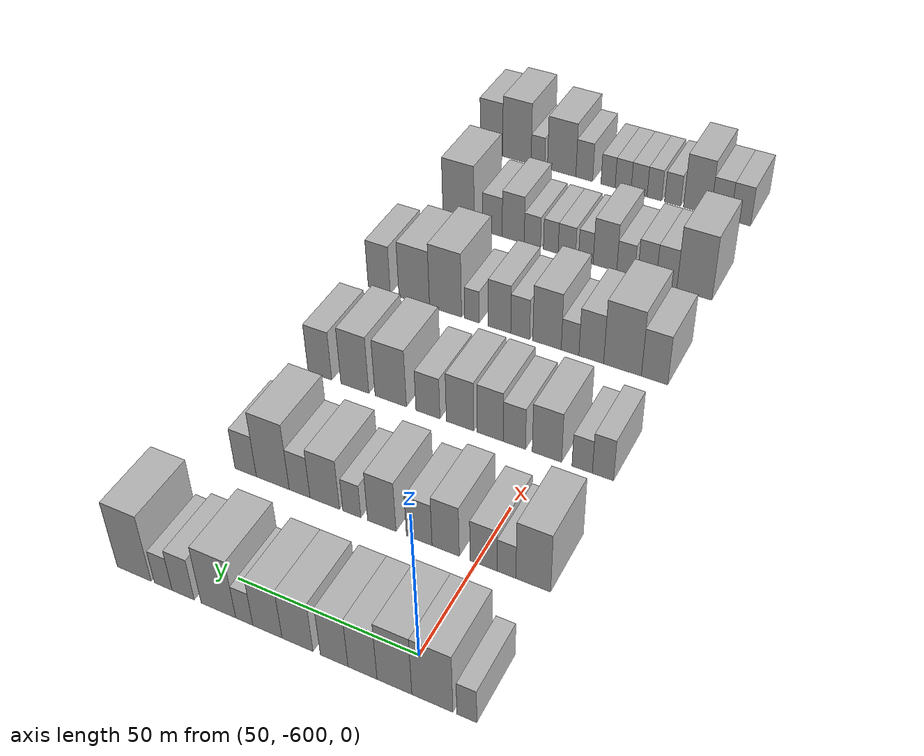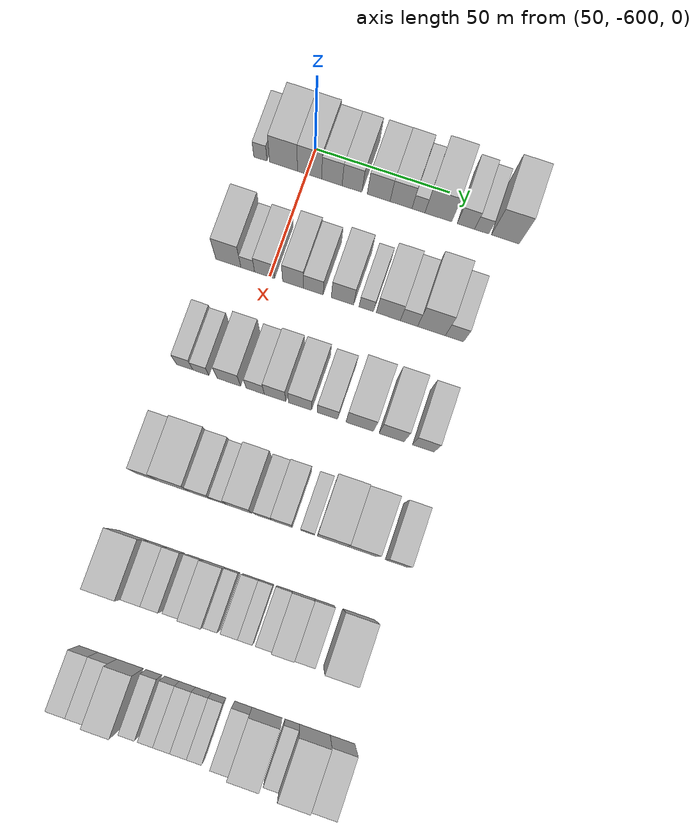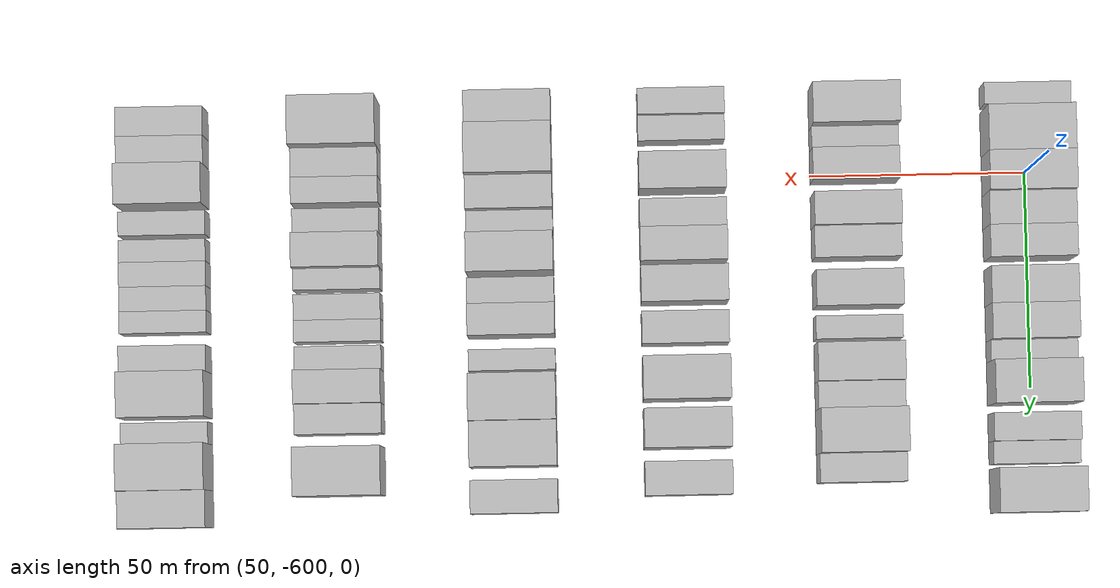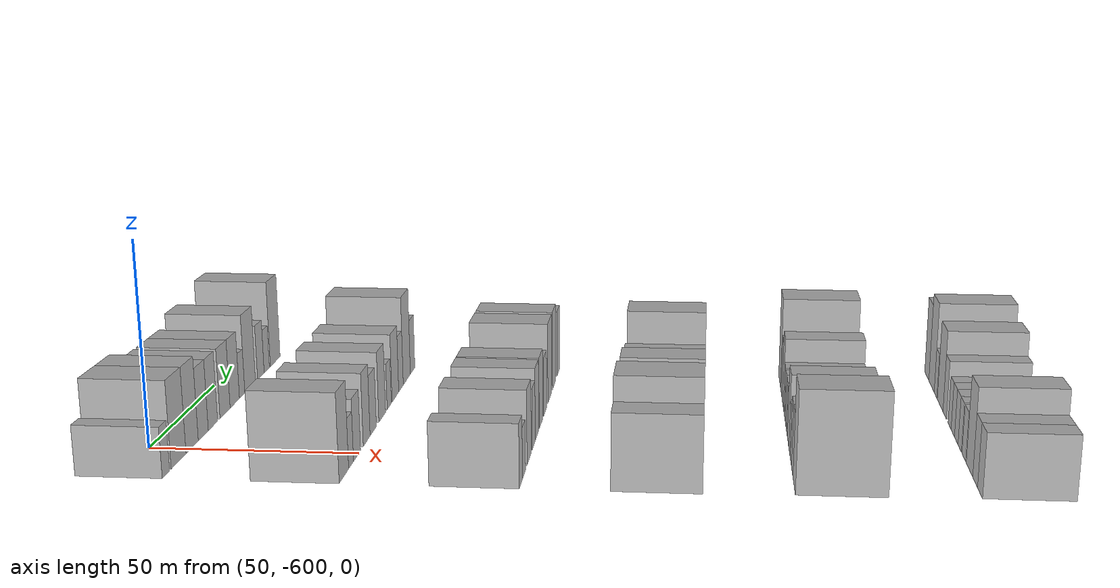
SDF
<sdf version="1.6">
 <world name="default">
  <model name="building_1">
   <static>1</static>
   <pose>50.0000 -617.5080 0 0.000000 0.000000 0.000000</pose>
   <link name="link">
    <pose>0 0 6.00 0 0 0</pose>
    <collision name="collision"><geometry><box><size>20.0000 4.9839 12.0000</size></box></geometry></collision>
    <visual name="visual">
     <cast_shadows>0</cast_shadows>
     <geometry><box><size>20.0000 4.9839 12.0000</size></box></geometry>
     <material>
      <script>
       <uri>model://HANNAS_wall/materials/scripts</uri>
       <uri>model://HANNAS_wall/materials/textures</uri>
       <name>vrc/HANNAS_wall</name>
      </script>
     </material>
    </visual>
   </link>
  </model>
  <model name="building_2">
   <static>1</static>
   <pose>50.0000 -608.7805 0 0.000000 0.000000 0.000000</pose>
   <link name="link">
    <pose>0 0 10.50 0 0 0</pose>
    <collision name="collision"><geometry><box><size>20.0000 10.4712 21.0000</size></box></geometry></collision>
    <visual name="visual">
     <cast_shadows>0</cast_shadows>
     <geometry><box><size>20.0000 10.4712 21.0000</size></box></geometry>
     <material>
      <script>
       <uri>model://HANNAS_wall/materials/scripts</uri>
       <uri>model://HANNAS_wall/materials/textures</uri>
       <name>vrc/HANNAS_wall</name>
      </script>
     </material>
    </visual>
   </link>
  </model>
  <model name="building_3">
   <static>1</static>
   <pose>50.0000 -599.0032 0 0.000000 0.000000 0.000000</pose>
   <link name="link">
    <pose>0 0 10.50 0 0 0</pose>
    <collision name="collision"><geometry><box><size>20.0000 9.0833 21.0000</size></box></geometry></collision>
    <visual name="visual">
     <cast_shadows>0</cast_shadows>
     <geometry><box><size>20.0000 9.0833 21.0000</size></box></geometry>
     <material>
      <script>
       <uri>model://HANNAS_wall/materials/scripts</uri>
       <uri>model://HANNAS_wall/materials/textures</uri>
       <name>vrc/HANNAS_wall</name>
      </script>
     </material>
    </visual>
   </link>
  </model>
  <model name="building_4">
   <static>1</static>
   <pose>50.0000 -590.6134 0 0.000000 0.000000 0.000000</pose>
   <link name="link">
    <pose>0 0 9.00 0 0 0</pose>
    <collision name="collision"><geometry><box><size>20.0000 7.6965 18.0000</size></box></geometry></collision>
    <visual name="visual">
     <cast_shadows>0</cast_shadows>
     <geometry><box><size>20.0000 7.6965 18.0000</size></box></geometry>
     <material>
      <script>
       <uri>model://HANNAS_wall/materials/scripts</uri>
       <uri>model://HANNAS_wall/materials/textures</uri>
       <name>vrc/HANNAS_wall</name>
      </script>
     </material>
    </visual>
   </link>
  </model>
  <model name="building_5">
   <static>1</static>
   <pose>50.0000 -583.0436 0 0.000000 0.000000 0.000000</pose>
   <link name="link">
    <pose>0 0 9.00 0 0 0</pose>
    <collision name="collision"><geometry><box><size>20.0000 7.4431 18.0000</size></box></geometry></collision>
    <visual name="visual">
     <cast_shadows>0</cast_shadows>
     <geometry><box><size>20.0000 7.4431 18.0000</size></box></geometry>
     <material>
      <script>
       <uri>model://HANNAS_wall/materials/scripts</uri>
       <uri>model://HANNAS_wall/materials/textures</uri>
       <name>vrc/HANNAS_wall</name>
      </script>
     </material>
    </visual>
   </link>
  </model>
  <model name="building_6">
   <static>1</static>
   <pose>50.0000 -573.0656 0 0.000000 0.000000 0.000000</pose>
   <link name="link">
    <pose>0 0 9.00 0 0 0</pose>
    <collision name="collision"><geometry><box><size>20.0000 8.5128 18.0000</size></box></geometry></collision>
    <visual name="visual">
     <cast_shadows>0</cast_shadows>
     <geometry><box><size>20.0000 8.5128 18.0000</size></box></geometry>
     <material>
      <script>
       <uri>model://HANNAS_wall/materials/scripts</uri>
       <uri>model://HANNAS_wall/materials/textures</uri>
       <name>vrc/HANNAS_wall</name>
      </script>
     </material>
    </visual>
   </link>
  </model>
  <model name="building_7">
   <static>1</static>
   <pose>50.0000 -564.7174 0 0.000000 0.000000 0.000000</pose>
   <link name="link">
    <pose>0 0 9.00 0 0 0</pose>
    <collision name="collision"><geometry><box><size>20.0000 8.1836 18.0000</size></box></geometry></collision>
    <visual name="visual">
     <cast_shadows>0</cast_shadows>
     <geometry><box><size>20.0000 8.1836 18.0000</size></box></geometry>
     <material>
      <script>
       <uri>model://HANNAS_wall/materials/scripts</uri>
       <uri>model://HANNAS_wall/materials/textures</uri>
       <name>vrc/HANNAS_wall</name>
      </script>
     </material>
    </visual>
   </link>
  </model>
  <model name="building_8">
   <static>1</static>
   <pose>50.0000 -558.2069 0 0.000000 0.000000 0.000000</pose>
   <link name="link">
    <pose>0 0 6.00 0 0 0</pose>
    <collision name="collision"><geometry><box><size>20.0000 4.8373 12.0000</size></box></geometry></collision>
    <visual name="visual">
     <cast_shadows>0</cast_shadows>
     <geometry><box><size>20.0000 4.8373 12.0000</size></box></geometry>
     <material>
      <script>
       <uri>model://HANNAS_wall/materials/scripts</uri>
       <uri>model://HANNAS_wall/materials/textures</uri>
       <name>vrc/HANNAS_wall</name>
      </script>
     </material>
    </visual>
   </link>
  </model>
  <model name="building_9">
   <static>1</static>
   <pose>50.0000 -550.8138 0 0.000000 0.000000 0.000000</pose>
   <link name="link">
    <pose>0 0 10.50 0 0 0</pose>
    <collision name="collision"><geometry><box><size>20.0000 9.9490 21.0000</size></box></geometry></collision>
    <visual name="visual">
     <cast_shadows>0</cast_shadows>
     <geometry><box><size>20.0000 9.9490 21.0000</size></box></geometry>
     <material>
      <script>
       <uri>model://HANNAS_wall/materials/scripts</uri>
       <uri>model://HANNAS_wall/materials/textures</uri>
       <name>vrc/HANNAS_wall</name>
      </script>
     </material>
    </visual>
   </link>
  </model>
  <model name="building_10">
   <static>1</static>
   <pose>50.0000 -540.6027 0 0.000000 0.000000 0.000000</pose>
   <link name="link">
    <pose>0 0 7.50 0 0 0</pose>
    <collision name="collision"><geometry><box><size>20.0000 6.4732 15.0000</size></box></geometry></collision>
    <visual name="visual">
     <cast_shadows>0</cast_shadows>
     <geometry><box><size>20.0000 6.4732 15.0000</size></box></geometry>
     <material>
      <script>
       <uri>model://HANNAS_wall/materials/scripts</uri>
       <uri>model://HANNAS_wall/materials/textures</uri>
       <name>vrc/HANNAS_wall</name>
      </script>
     </material>
    </visual>
   </link>
  </model>
  <model name="building_11">
   <static>1</static>
   <pose>50.0000 -534.7439 0 0.000000 0.000000 0.000000</pose>
   <link name="link">
    <pose>0 0 6.00 0 0 0</pose>
    <collision name="collision"><geometry><box><size>20.0000 5.2442 12.0000</size></box></geometry></collision>
    <visual name="visual">
     <cast_shadows>0</cast_shadows>
     <geometry><box><size>20.0000 5.2442 12.0000</size></box></geometry>
     <material>
      <script>
       <uri>model://HANNAS_wall/materials/scripts</uri>
       <uri>model://HANNAS_wall/materials/textures</uri>
       <name>vrc/HANNAS_wall</name>
      </script>
     </material>
    </visual>
   </link>
  </model>
  <model name="building_12">
   <static>1</static>
   <pose>50.0000 -526.0318 0 0.000000 0.000000 0.000000</pose>
   <link name="link">
    <pose>0 0 12.00 0 0 0</pose>
    <collision name="collision"><geometry><box><size>20.0000 10.1800 24.0000</size></box></geometry></collision>
    <visual name="visual">
     <cast_shadows>0</cast_shadows>
     <geometry><box><size>20.0000 10.1800 24.0000</size></box></geometry>
     <material>
      <script>
       <uri>model://HANNAS_wall/materials/scripts</uri>
       <uri>model://HANNAS_wall/materials/textures</uri>
       <name>vrc/HANNAS_wall</name>
      </script>
     </material>
    </visual>
   </link>
  </model>
  <model name="building_140">
   <static>1</static>
   <pose>90.0000 -615.3307 0 0.000000 0.000000 0.000000</pose>
   <link name="link">
    <pose>0 0 10.50 0 0 0</pose>
    <collision name="collision"><geometry><box><size>20.0000 9.3386 21.0000</size></box></geometry></collision>
    <visual name="visual">
     <cast_shadows>0</cast_shadows>
     <geometry><box><size>20.0000 9.3386 21.0000</size></box></geometry>
     <material>
      <script>
       <uri>model://HANNAS_wall/materials/scripts</uri>
       <uri>model://HANNAS_wall/materials/textures</uri>
       <name>vrc/HANNAS_wall</name>
      </script>
     </material>
    </visual>
   </link>
  </model>
  <model name="building_141">
   <static>1</static>
   <pose>90.0000 -608.1222 0 0.000000 0.000000 0.000000</pose>
   <link name="link">
    <pose>0 0 6.00 0 0 0</pose>
    <collision name="collision"><geometry><box><size>20.0000 5.0783 12.0000</size></box></geometry></collision>
    <visual name="visual">
     <cast_shadows>0</cast_shadows>
     <geometry><box><size>20.0000 5.0783 12.0000</size></box></geometry>
     <material>
      <script>
       <uri>model://HANNAS_wall/materials/scripts</uri>
       <uri>model://HANNAS_wall/materials/textures</uri>
       <name>vrc/HANNAS_wall</name>
      </script>
     </material>
    </visual>
   </link>
  </model>
  <model name="building_142">
   <static>1</static>
   <pose>90.0000 -601.8716 0 0.000000 0.000000 0.000000</pose>
   <link name="link">
    <pose>0 0 7.50 0 0 0</pose>
    <collision name="collision"><geometry><box><size>20.0000 7.4229 15.0000</size></box></geometry></collision>
    <visual name="visual">
     <cast_shadows>0</cast_shadows>
     <geometry><box><size>20.0000 7.4229 15.0000</size></box></geometry>
     <material>
      <script>
       <uri>model://HANNAS_wall/materials/scripts</uri>
       <uri>model://HANNAS_wall/materials/textures</uri>
       <name>vrc/HANNAS_wall</name>
      </script>
     </material>
    </visual>
   </link>
  </model>
  <model name="building_143">
   <static>1</static>
   <pose>90.0000 -591.3292 0 0.000000 0.000000 0.000000</pose>
   <link name="link">
    <pose>0 0 9.00 0 0 0</pose>
    <collision name="collision"><geometry><box><size>20.0000 7.6619 18.0000</size></box></geometry></collision>
    <visual name="visual">
     <cast_shadows>0</cast_shadows>
     <geometry><box><size>20.0000 7.6619 18.0000</size></box></geometry>
     <material>
      <script>
       <uri>model://HANNAS_wall/materials/scripts</uri>
       <uri>model://HANNAS_wall/materials/textures</uri>
       <name>vrc/HANNAS_wall</name>
      </script>
     </material>
    </visual>
   </link>
  </model>
  <model name="building_144">
   <static>1</static>
   <pose>90.0000 -583.8471 0 0.000000 0.000000 0.000000</pose>
   <link name="link">
    <pose>0 0 7.50 0 0 0</pose>
    <collision name="collision"><geometry><box><size>20.0000 7.3023 15.0000</size></box></geometry></collision>
    <visual name="visual">
     <cast_shadows>0</cast_shadows>
     <geometry><box><size>20.0000 7.3023 15.0000</size></box></geometry>
     <material>
      <script>
       <uri>model://HANNAS_wall/materials/scripts</uri>
       <uri>model://HANNAS_wall/materials/textures</uri>
       <name>vrc/HANNAS_wall</name>
      </script>
     </material>
    </visual>
   </link>
  </model>
  <model name="building_145">
   <static>1</static>
   <pose>90.0000 -573.0775 0 0.000000 0.000000 0.000000</pose>
   <link name="link">
    <pose>0 0 9.00 0 0 0</pose>
    <collision name="collision"><geometry><box><size>20.0000 8.2370 18.0000</size></box></geometry></collision>
    <visual name="visual">
     <cast_shadows>0</cast_shadows>
     <geometry><box><size>20.0000 8.2370 18.0000</size></box></geometry>
     <material>
      <script>
       <uri>model://HANNAS_wall/materials/scripts</uri>
       <uri>model://HANNAS_wall/materials/textures</uri>
       <name>vrc/HANNAS_wall</name>
      </script>
     </material>
    </visual>
   </link>
  </model>
  <model name="building_146">
   <static>1</static>
   <pose>90.0000 -564.2979 0 0.000000 0.000000 0.000000</pose>
   <link name="link">
    <pose>0 0 6.00 0 0 0</pose>
    <collision name="collision"><geometry><box><size>20.0000 5.3223 12.0000</size></box></geometry></collision>
    <visual name="visual">
     <cast_shadows>0</cast_shadows>
     <geometry><box><size>20.0000 5.3223 12.0000</size></box></geometry>
     <material>
      <script>
       <uri>model://HANNAS_wall/materials/scripts</uri>
       <uri>model://HANNAS_wall/materials/textures</uri>
       <name>vrc/HANNAS_wall</name>
      </script>
     </material>
    </visual>
   </link>
  </model>
  <model name="building_147">
   <static>1</static>
   <pose>90.0000 -556.2161 0 0.000000 0.000000 0.000000</pose>
   <link name="link">
    <pose>0 0 9.00 0 0 0</pose>
    <collision name="collision"><geometry><box><size>20.0000 8.8412 18.0000</size></box></geometry></collision>
    <visual name="visual">
     <cast_shadows>0</cast_shadows>
     <geometry><box><size>20.0000 8.8412 18.0000</size></box></geometry>
     <material>
      <script>
       <uri>model://HANNAS_wall/materials/scripts</uri>
       <uri>model://HANNAS_wall/materials/textures</uri>
       <name>vrc/HANNAS_wall</name>
      </script>
     </material>
    </visual>
   </link>
  </model>
  <model name="building_148">
   <static>1</static>
   <pose>90.0000 -548.6310 0 0.000000 0.000000 0.000000</pose>
   <link name="link">
    <pose>0 0 7.50 0 0 0</pose>
    <collision name="collision"><geometry><box><size>20.0000 6.3290 15.0000</size></box></geometry></collision>
    <visual name="visual">
     <cast_shadows>0</cast_shadows>
     <geometry><box><size>20.0000 6.3290 15.0000</size></box></geometry>
     <material>
      <script>
       <uri>model://HANNAS_wall/materials/scripts</uri>
       <uri>model://HANNAS_wall/materials/textures</uri>
       <name>vrc/HANNAS_wall</name>
      </script>
     </material>
    </visual>
   </link>
  </model>
  <model name="building_149">
   <static>1</static>
   <pose>90.0000 -540.3882 0 0.000000 0.000000 0.000000</pose>
   <link name="link">
    <pose>0 0 12.00 0 0 0</pose>
    <collision name="collision"><geometry><box><size>20.0000 10.1566 24.0000</size></box></geometry></collision>
    <visual name="visual">
     <cast_shadows>0</cast_shadows>
     <geometry><box><size>20.0000 10.1566 24.0000</size></box></geometry>
     <material>
      <script>
       <uri>model://HANNAS_wall/materials/scripts</uri>
       <uri>model://HANNAS_wall/materials/textures</uri>
       <name>vrc/HANNAS_wall</name>
      </script>
     </material>
    </visual>
   </link>
  </model>
  <model name="building_150">
   <static>1</static>
   <pose>90.0000 -531.9749 0 0.000000 0.000000 0.000000</pose>
   <link name="link">
    <pose>0 0 7.50 0 0 0</pose>
    <collision name="collision"><geometry><box><size>20.0000 6.6699 15.0000</size></box></geometry></collision>
    <visual name="visual">
     <cast_shadows>0</cast_shadows>
     <geometry><box><size>20.0000 6.6699 15.0000</size></box></geometry>
     <material>
      <script>
       <uri>model://HANNAS_wall/materials/scripts</uri>
       <uri>model://HANNAS_wall/materials/textures</uri>
       <name>vrc/HANNAS_wall</name>
      </script>
     </material>
    </visual>
   </link>
  </model>
  <model name="building_280">
   <static>1</static>
   <pose>130.0000 -616.9835 0 0.000000 0.000000 0.000000</pose>
   <link name="link">
    <pose>0 0 7.50 0 0 0</pose>
    <collision name="collision"><geometry><box><size>20.0000 6.0331 15.0000</size></box></geometry></collision>
    <visual name="visual">
     <cast_shadows>0</cast_shadows>
     <geometry><box><size>20.0000 6.0331 15.0000</size></box></geometry>
     <material>
      <script>
       <uri>model://HANNAS_wall/materials/scripts</uri>
       <uri>model://HANNAS_wall/materials/textures</uri>
       <name>vrc/HANNAS_wall</name>
      </script>
     </material>
    </visual>
   </link>
  </model>
  <model name="building_281">
   <static>1</static>
   <pose>130.0000 -611.0534 0 0.000000 0.000000 0.000000</pose>
   <link name="link">
    <pose>0 0 6.00 0 0 0</pose>
    <collision name="collision"><geometry><box><size>20.0000 5.8271 12.0000</size></box></geometry></collision>
    <visual name="visual">
     <cast_shadows>0</cast_shadows>
     <geometry><box><size>20.0000 5.8271 12.0000</size></box></geometry>
     <material>
      <script>
       <uri>model://HANNAS_wall/materials/scripts</uri>
       <uri>model://HANNAS_wall/materials/textures</uri>
       <name>vrc/HANNAS_wall</name>
      </script>
     </material>
    </visual>
   </link>
  </model>
  <model name="building_282">
   <static>1</static>
   <pose>130.0000 -600.8478 0 0.000000 0.000000 0.000000</pose>
   <link name="link">
    <pose>0 0 9.00 0 0 0</pose>
    <collision name="collision"><geometry><box><size>20.0000 8.5841 18.0000</size></box></geometry></collision>
    <visual name="visual">
     <cast_shadows>0</cast_shadows>
     <geometry><box><size>20.0000 8.5841 18.0000</size></box></geometry>
     <material>
      <script>
       <uri>model://HANNAS_wall/materials/scripts</uri>
       <uri>model://HANNAS_wall/materials/textures</uri>
       <name>vrc/HANNAS_wall</name>
      </script>
     </material>
    </visual>
   </link>
  </model>
  <model name="building_283">
   <static>1</static>
   <pose>130.0000 -591.2334 0 0.000000 0.000000 0.000000</pose>
   <link name="link">
    <pose>0 0 7.50 0 0 0</pose>
    <collision name="collision"><geometry><box><size>20.0000 6.6446 15.0000</size></box></geometry></collision>
    <visual name="visual">
     <cast_shadows>0</cast_shadows>
     <geometry><box><size>20.0000 6.6446 15.0000</size></box></geometry>
     <material>
      <script>
       <uri>model://HANNAS_wall/materials/scripts</uri>
       <uri>model://HANNAS_wall/materials/textures</uri>
       <name>vrc/HANNAS_wall</name>
      </script>
     </material>
    </visual>
   </link>
  </model>
  <model name="building_284">
   <static>1</static>
   <pose>130.0000 -583.9913 0 0.000000 0.000000 0.000000</pose>
   <link name="link">
    <pose>0 0 9.00 0 0 0</pose>
    <collision name="collision"><geometry><box><size>20.0000 7.8398 18.0000</size></box></geometry></collision>
    <visual name="visual">
     <cast_shadows>0</cast_shadows>
     <geometry><box><size>20.0000 7.8398 18.0000</size></box></geometry>
     <material>
      <script>
       <uri>model://HANNAS_wall/materials/scripts</uri>
       <uri>model://HANNAS_wall/materials/textures</uri>
       <name>vrc/HANNAS_wall</name>
      </script>
     </material>
    </visual>
   </link>
  </model>
  <model name="building_285">
   <static>1</static>
   <pose>130.0000 -574.8950 0 0.000000 0.000000 0.000000</pose>
   <link name="link">
    <pose>0 0 9.00 0 0 0</pose>
    <collision name="collision"><geometry><box><size>20.0000 8.3527 18.0000</size></box></geometry></collision>
    <visual name="visual">
     <cast_shadows>0</cast_shadows>
     <geometry><box><size>20.0000 8.3527 18.0000</size></box></geometry>
     <material>
      <script>
       <uri>model://HANNAS_wall/materials/scripts</uri>
       <uri>model://HANNAS_wall/materials/textures</uri>
       <name>vrc/HANNAS_wall</name>
      </script>
     </material>
    </visual>
   </link>
  </model>
  <model name="building_286">
   <static>1</static>
   <pose>130.0000 -564.9845 0 0.000000 0.000000 0.000000</pose>
   <link name="link">
    <pose>0 0 7.50 0 0 0</pose>
    <collision name="collision"><geometry><box><size>20.0000 7.4684 15.0000</size></box></geometry></collision>
    <visual name="visual">
     <cast_shadows>0</cast_shadows>
     <geometry><box><size>20.0000 7.4684 15.0000</size></box></geometry>
     <material>
      <script>
       <uri>model://HANNAS_wall/materials/scripts</uri>
       <uri>model://HANNAS_wall/materials/textures</uri>
       <name>vrc/HANNAS_wall</name>
      </script>
     </material>
    </visual>
   </link>
  </model>
  <model name="building_287">
   <static>1</static>
   <pose>130.0000 -553.2736 0 0.000000 0.000000 0.000000</pose>
   <link name="link">
    <pose>0 0 10.50 0 0 0</pose>
    <collision name="collision"><geometry><box><size>20.0000 9.9535 21.0000</size></box></geometry></collision>
    <visual name="visual">
     <cast_shadows>0</cast_shadows>
     <geometry><box><size>20.0000 9.9535 21.0000</size></box></geometry>
     <material>
      <script>
       <uri>model://HANNAS_wall/materials/scripts</uri>
       <uri>model://HANNAS_wall/materials/textures</uri>
       <name>vrc/HANNAS_wall</name>
      </script>
     </material>
    </visual>
   </link>
  </model>
  <model name="building_288">
   <static>1</static>
   <pose>130.0000 -541.7798 0 0.000000 0.000000 0.000000</pose>
   <link name="link">
    <pose>0 0 10.50 0 0 0</pose>
    <collision name="collision"><geometry><box><size>20.0000 9.0341 21.0000</size></box></geometry></collision>
    <visual name="visual">
     <cast_shadows>0</cast_shadows>
     <geometry><box><size>20.0000 9.0341 21.0000</size></box></geometry>
     <material>
      <script>
       <uri>model://HANNAS_wall/materials/scripts</uri>
       <uri>model://HANNAS_wall/materials/textures</uri>
       <name>vrc/HANNAS_wall</name>
      </script>
     </material>
    </visual>
   </link>
  </model>
  <model name="building_289">
   <static>1</static>
   <pose>130.0000 -530.3730 0 0.000000 0.000000 0.000000</pose>
   <link name="link">
    <pose>0 0 9.00 0 0 0</pose>
    <collision name="collision"><geometry><box><size>20.0000 7.7794 18.0000</size></box></geometry></collision>
    <visual name="visual">
     <cast_shadows>0</cast_shadows>
     <geometry><box><size>20.0000 7.7794 18.0000</size></box></geometry>
     <material>
      <script>
       <uri>model://HANNAS_wall/materials/scripts</uri>
       <uri>model://HANNAS_wall/materials/textures</uri>
       <name>vrc/HANNAS_wall</name>
      </script>
     </material>
    </visual>
   </link>
  </model>
  <model name="building_416">
   <static>1</static>
   <pose>170.0000 -616.0210 0 0.000000 0.000000 0.000000</pose>
   <link name="link">
    <pose>0 0 9.00 0 0 0</pose>
    <collision name="collision"><geometry><box><size>20.0000 7.9580 18.0000</size></box></geometry></collision>
    <visual name="visual">
     <cast_shadows>0</cast_shadows>
     <geometry><box><size>20.0000 7.9580 18.0000</size></box></geometry>
     <material>
      <script>
       <uri>model://HANNAS_wall/materials/scripts</uri>
       <uri>model://HANNAS_wall/materials/textures</uri>
       <name>vrc/HANNAS_wall</name>
      </script>
     </material>
    </visual>
   </link>
  </model>
  <model name="building_417">
   <static>1</static>
   <pose>170.0000 -606.2613 0 0.000000 0.000000 0.000000</pose>
   <link name="link">
    <pose>0 0 12.00 0 0 0</pose>
    <collision name="collision"><geometry><box><size>20.0000 11.5613 24.0000</size></box></geometry></collision>
    <visual name="visual">
     <cast_shadows>0</cast_shadows>
     <geometry><box><size>20.0000 11.5613 24.0000</size></box></geometry>
     <material>
      <script>
       <uri>model://HANNAS_wall/materials/scripts</uri>
       <uri>model://HANNAS_wall/materials/textures</uri>
       <name>vrc/HANNAS_wall</name>
      </script>
     </material>
    </visual>
   </link>
  </model>
  <model name="building_418">
   <static>1</static>
   <pose>170.0000 -596.6384 0 0.000000 0.000000 0.000000</pose>
   <link name="link">
    <pose>0 0 9.00 0 0 0</pose>
    <collision name="collision"><geometry><box><size>20.0000 7.6844 18.0000</size></box></geometry></collision>
    <visual name="visual">
     <cast_shadows>0</cast_shadows>
     <geometry><box><size>20.0000 7.6844 18.0000</size></box></geometry>
     <material>
      <script>
       <uri>model://HANNAS_wall/materials/scripts</uri>
       <uri>model://HANNAS_wall/materials/textures</uri>
       <name>vrc/HANNAS_wall</name>
      </script>
     </material>
    </visual>
   </link>
  </model>
  <model name="building_419">
   <static>1</static>
   <pose>170.0000 -590.0206 0 0.000000 0.000000 0.000000</pose>
   <link name="link">
    <pose>0 0 6.00 0 0 0</pose>
    <collision name="collision"><geometry><box><size>20.0000 5.5512 12.0000</size></box></geometry></collision>
    <visual name="visual">
     <cast_shadows>0</cast_shadows>
     <geometry><box><size>20.0000 5.5512 12.0000</size></box></geometry>
     <material>
      <script>
       <uri>model://HANNAS_wall/materials/scripts</uri>
       <uri>model://HANNAS_wall/materials/textures</uri>
       <name>vrc/HANNAS_wall</name>
      </script>
     </material>
    </visual>
   </link>
  </model>
  <model name="building_420">
   <static>1</static>
   <pose>170.0000 -582.7133 0 0.000000 0.000000 0.000000</pose>
   <link name="link">
    <pose>0 0 10.50 0 0 0</pose>
    <collision name="collision"><geometry><box><size>20.0000 9.0635 21.0000</size></box></geometry></collision>
    <visual name="visual">
     <cast_shadows>0</cast_shadows>
     <geometry><box><size>20.0000 9.0635 21.0000</size></box></geometry>
     <material>
      <script>
       <uri>model://HANNAS_wall/materials/scripts</uri>
       <uri>model://HANNAS_wall/materials/textures</uri>
       <name>vrc/HANNAS_wall</name>
      </script>
     </material>
    </visual>
   </link>
  </model>
  <model name="building_421">
   <static>1</static>
   <pose>170.0000 -574.1354 0 0.000000 0.000000 0.000000</pose>
   <link name="link">
    <pose>0 0 7.50 0 0 0</pose>
    <collision name="collision"><geometry><box><size>20.0000 6.0923 15.0000</size></box></geometry></collision>
    <visual name="visual">
     <cast_shadows>0</cast_shadows>
     <geometry><box><size>20.0000 6.0923 15.0000</size></box></geometry>
     <material>
      <script>
       <uri>model://HANNAS_wall/materials/scripts</uri>
       <uri>model://HANNAS_wall/materials/textures</uri>
       <name>vrc/HANNAS_wall</name>
      </script>
     </material>
    </visual>
   </link>
  </model>
  <model name="building_422">
   <static>1</static>
   <pose>170.0000 -567.4513 0 0.000000 0.000000 0.000000</pose>
   <link name="link">
    <pose>0 0 9.00 0 0 0</pose>
    <collision name="collision"><geometry><box><size>20.0000 7.2758 18.0000</size></box></geometry></collision>
    <visual name="visual">
     <cast_shadows>0</cast_shadows>
     <geometry><box><size>20.0000 7.2758 18.0000</size></box></geometry>
     <material>
      <script>
       <uri>model://HANNAS_wall/materials/scripts</uri>
       <uri>model://HANNAS_wall/materials/textures</uri>
       <name>vrc/HANNAS_wall</name>
      </script>
     </material>
    </visual>
   </link>
  </model>
  <model name="building_423">
   <static>1</static>
   <pose>170.0000 -558.3760 0 0.000000 0.000000 0.000000</pose>
   <link name="link">
    <pose>0 0 6.00 0 0 0</pose>
    <collision name="collision"><geometry><box><size>20.0000 4.8749 12.0000</size></box></geometry></collision>
    <visual name="visual">
     <cast_shadows>0</cast_shadows>
     <geometry><box><size>20.0000 4.8749 12.0000</size></box></geometry>
     <material>
      <script>
       <uri>model://HANNAS_wall/materials/scripts</uri>
       <uri>model://HANNAS_wall/materials/textures</uri>
       <name>vrc/HANNAS_wall</name>
      </script>
     </material>
    </visual>
   </link>
  </model>
  <model name="building_424">
   <static>1</static>
   <pose>170.0000 -549.5621 0 0.000000 0.000000 0.000000</pose>
   <link name="link">
    <pose>0 0 12.00 0 0 0</pose>
    <collision name="collision"><geometry><box><size>20.0000 10.7530 24.0000</size></box></geometry></collision>
    <visual name="visual">
     <cast_shadows>0</cast_shadows>
     <geometry><box><size>20.0000 10.7530 24.0000</size></box></geometry>
     <material>
      <script>
       <uri>model://HANNAS_wall/materials/scripts</uri>
       <uri>model://HANNAS_wall/materials/textures</uri>
       <name>vrc/HANNAS_wall</name>
      </script>
     </material>
    </visual>
   </link>
  </model>
  <model name="building_425">
   <static>1</static>
   <pose>170.0000 -538.9756 0 0.000000 0.000000 0.000000</pose>
   <link name="link">
    <pose>0 0 10.50 0 0 0</pose>
    <collision name="collision"><geometry><box><size>20.0000 10.4199 21.0000</size></box></geometry></collision>
    <visual name="visual">
     <cast_shadows>0</cast_shadows>
     <geometry><box><size>20.0000 10.4199 21.0000</size></box></geometry>
     <material>
      <script>
       <uri>model://HANNAS_wall/materials/scripts</uri>
       <uri>model://HANNAS_wall/materials/textures</uri>
       <name>vrc/HANNAS_wall</name>
      </script>
     </material>
    </visual>
   </link>
  </model>
  <model name="building_426">
   <static>1</static>
   <pose>170.0000 -526.9351 0 0.000000 0.000000 0.000000</pose>
   <link name="link">
    <pose>0 0 9.00 0 0 0</pose>
    <collision name="collision"><geometry><box><size>20.0000 7.6611 18.0000</size></box></geometry></collision>
    <visual name="visual">
     <cast_shadows>0</cast_shadows>
     <geometry><box><size>20.0000 7.6611 18.0000</size></box></geometry>
     <material>
      <script>
       <uri>model://HANNAS_wall/materials/scripts</uri>
       <uri>model://HANNAS_wall/materials/textures</uri>
       <name>vrc/HANNAS_wall</name>
      </script>
     </material>
    </visual>
   </link>
  </model>
  <model name="building_556">
   <static>1</static>
   <pose>210.0000 -613.3880 0 0.000000 0.000000 0.000000</pose>
   <link name="link">
    <pose>0 0 12.00 0 0 0</pose>
    <collision name="collision"><geometry><box><size>20.0000 11.2239 24.0000</size></box></geometry></collision>
    <visual name="visual">
     <cast_shadows>0</cast_shadows>
     <geometry><box><size>20.0000 11.2239 24.0000</size></box></geometry>
     <material>
      <script>
       <uri>model://HANNAS_wall/materials/scripts</uri>
       <uri>model://HANNAS_wall/materials/textures</uri>
       <name>vrc/HANNAS_wall</name>
      </script>
     </material>
    </visual>
   </link>
  </model>
  <model name="building_557">
   <static>1</static>
   <pose>210.0000 -604.4421 0 0.000000 0.000000 0.000000</pose>
   <link name="link">
    <pose>0 0 7.50 0 0 0</pose>
    <collision name="collision"><geometry><box><size>20.0000 6.6680 15.0000</size></box></geometry></collision>
    <visual name="visual">
     <cast_shadows>0</cast_shadows>
     <geometry><box><size>20.0000 6.6680 15.0000</size></box></geometry>
     <material>
      <script>
       <uri>model://HANNAS_wall/materials/scripts</uri>
       <uri>model://HANNAS_wall/materials/textures</uri>
       <name>vrc/HANNAS_wall</name>
      </script>
     </material>
    </visual>
   </link>
  </model>
  <model name="building_558">
   <static>1</static>
   <pose>210.0000 -598.0766 0 0.000000 0.000000 0.000000</pose>
   <link name="link">
    <pose>0 0 7.50 0 0 0</pose>
    <collision name="collision"><geometry><box><size>20.0000 6.0630 15.0000</size></box></geometry></collision>
    <visual name="visual">
     <cast_shadows>0</cast_shadows>
     <geometry><box><size>20.0000 6.0630 15.0000</size></box></geometry>
     <material>
      <script>
       <uri>model://HANNAS_wall/materials/scripts</uri>
       <uri>model://HANNAS_wall/materials/textures</uri>
       <name>vrc/HANNAS_wall</name>
      </script>
     </material>
    </visual>
   </link>
  </model>
  <model name="building_559">
   <static>1</static>
   <pose>210.0000 -591.0958 0 0.000000 0.000000 0.000000</pose>
   <link name="link">
    <pose>0 0 6.00 0 0 0</pose>
    <collision name="collision"><geometry><box><size>20.0000 5.8986 12.0000</size></box></geometry></collision>
    <visual name="visual">
     <cast_shadows>0</cast_shadows>
     <geometry><box><size>20.0000 5.8986 12.0000</size></box></geometry>
     <material>
      <script>
       <uri>model://HANNAS_wall/materials/scripts</uri>
       <uri>model://HANNAS_wall/materials/textures</uri>
       <name>vrc/HANNAS_wall</name>
      </script>
     </material>
    </visual>
   </link>
  </model>
  <model name="building_560">
   <static>1</static>
   <pose>210.0000 -584.1963 0 0.000000 0.000000 0.000000</pose>
   <link name="link">
    <pose>0 0 9.00 0 0 0</pose>
    <collision name="collision"><geometry><box><size>20.0000 7.9006 18.0000</size></box></geometry></collision>
    <visual name="visual">
     <cast_shadows>0</cast_shadows>
     <geometry><box><size>20.0000 7.9006 18.0000</size></box></geometry>
     <material>
      <script>
       <uri>model://HANNAS_wall/materials/scripts</uri>
       <uri>model://HANNAS_wall/materials/textures</uri>
       <name>vrc/HANNAS_wall</name>
      </script>
     </material>
    </visual>
   </link>
  </model>
  <model name="building_561">
   <static>1</static>
   <pose>210.0000 -577.7828 0 0.000000 0.000000 0.000000</pose>
   <link name="link">
    <pose>0 0 6.00 0 0 0</pose>
    <collision name="collision"><geometry><box><size>20.0000 4.9263 12.0000</size></box></geometry></collision>
    <visual name="visual">
     <cast_shadows>0</cast_shadows>
     <geometry><box><size>20.0000 4.9263 12.0000</size></box></geometry>
     <material>
      <script>
       <uri>model://HANNAS_wall/materials/scripts</uri>
       <uri>model://HANNAS_wall/materials/textures</uri>
       <name>vrc/HANNAS_wall</name>
      </script>
     </material>
    </visual>
   </link>
  </model>
  <model name="building_562">
   <static>1</static>
   <pose>210.0000 -571.3539 0 0.000000 0.000000 0.000000</pose>
   <link name="link">
    <pose>0 0 6.00 0 0 0</pose>
    <collision name="collision"><geometry><box><size>20.0000 5.9315 12.0000</size></box></geometry></collision>
    <visual name="visual">
     <cast_shadows>0</cast_shadows>
     <geometry><box><size>20.0000 5.9315 12.0000</size></box></geometry>
     <material>
      <script>
       <uri>model://HANNAS_wall/materials/scripts</uri>
       <uri>model://HANNAS_wall/materials/textures</uri>
       <name>vrc/HANNAS_wall</name>
      </script>
     </material>
    </visual>
   </link>
  </model>
  <model name="building_563">
   <static>1</static>
   <pose>210.0000 -565.8612 0 0.000000 0.000000 0.000000</pose>
   <link name="link">
    <pose>0 0 6.00 0 0 0</pose>
    <collision name="collision"><geometry><box><size>20.0000 5.0539 12.0000</size></box></geometry></collision>
    <visual name="visual">
     <cast_shadows>0</cast_shadows>
     <geometry><box><size>20.0000 5.0539 12.0000</size></box></geometry>
     <material>
      <script>
       <uri>model://HANNAS_wall/materials/scripts</uri>
       <uri>model://HANNAS_wall/materials/textures</uri>
       <name>vrc/HANNAS_wall</name>
      </script>
     </material>
    </visual>
   </link>
  </model>
  <model name="building_564">
   <static>1</static>
   <pose>210.0000 -559.5161 0 0.000000 0.000000 0.000000</pose>
   <link name="link">
    <pose>0 0 6.00 0 0 0</pose>
    <collision name="collision"><geometry><box><size>20.0000 5.6363 12.0000</size></box></geometry></collision>
    <visual name="visual">
     <cast_shadows>0</cast_shadows>
     <geometry><box><size>20.0000 5.6363 12.0000</size></box></geometry>
     <material>
      <script>
       <uri>model://HANNAS_wall/materials/scripts</uri>
       <uri>model://HANNAS_wall/materials/textures</uri>
       <name>vrc/HANNAS_wall</name>
      </script>
     </material>
    </visual>
   </link>
  </model>
  <model name="building_565">
   <static>1</static>
   <pose>210.0000 -552.8394 0 0.000000 0.000000 0.000000</pose>
   <link name="link">
    <pose>0 0 9.00 0 0 0</pose>
    <collision name="collision"><geometry><box><size>20.0000 7.7171 18.0000</size></box></geometry></collision>
    <visual name="visual">
     <cast_shadows>0</cast_shadows>
     <geometry><box><size>20.0000 7.7171 18.0000</size></box></geometry>
     <material>
      <script>
       <uri>model://HANNAS_wall/materials/scripts</uri>
       <uri>model://HANNAS_wall/materials/textures</uri>
       <name>vrc/HANNAS_wall</name>
      </script>
     </material>
    </visual>
   </link>
  </model>
  <model name="building_566">
   <static>1</static>
   <pose>210.0000 -545.5212 0 0.000000 0.000000 0.000000</pose>
   <link name="link">
    <pose>0 0 7.50 0 0 0</pose>
    <collision name="collision"><geometry><box><size>20.0000 6.9194 15.0000</size></box></geometry></collision>
    <visual name="visual">
     <cast_shadows>0</cast_shadows>
     <geometry><box><size>20.0000 6.9194 15.0000</size></box></geometry>
     <material>
      <script>
       <uri>model://HANNAS_wall/materials/scripts</uri>
       <uri>model://HANNAS_wall/materials/textures</uri>
       <name>vrc/HANNAS_wall</name>
      </script>
     </material>
    </visual>
   </link>
  </model>
  <model name="building_567">
   <static>1</static>
   <pose>210.0000 -533.4629 0 0.000000 0.000000 0.000000</pose>
   <link name="link">
    <pose>0 0 12.00 0 0 0</pose>
    <collision name="collision"><geometry><box><size>20.0000 11.1972 24.0000</size></box></geometry></collision>
    <visual name="visual">
     <cast_shadows>0</cast_shadows>
     <geometry><box><size>20.0000 11.1972 24.0000</size></box></geometry>
     <material>
      <script>
       <uri>model://HANNAS_wall/materials/scripts</uri>
       <uri>model://HANNAS_wall/materials/textures</uri>
       <name>vrc/HANNAS_wall</name>
      </script>
     </material>
    </visual>
   </link>
  </model>
  <model name="building_689">
   <static>1</static>
   <pose>250.0000 -614.6506 0 0.000000 0.000000 0.000000</pose>
   <link name="link">
    <pose>0 0 7.50 0 0 0</pose>
    <collision name="collision"><geometry><box><size>20.0000 6.6988 15.0000</size></box></geometry></collision>
    <visual name="visual">
     <cast_shadows>0</cast_shadows>
     <geometry><box><size>20.0000 6.6988 15.0000</size></box></geometry>
     <material>
      <script>
       <uri>model://HANNAS_wall/materials/scripts</uri>
       <uri>model://HANNAS_wall/materials/textures</uri>
       <name>vrc/HANNAS_wall</name>
      </script>
     </material>
    </visual>
   </link>
  </model>
  <model name="building_690">
   <static>1</static>
   <pose>250.0000 -607.9321 0 0.000000 0.000000 0.000000</pose>
   <link name="link">
    <pose>0 0 7.50 0 0 0</pose>
    <collision name="collision"><geometry><box><size>20.0000 6.7382 15.0000</size></box></geometry></collision>
    <visual name="visual">
     <cast_shadows>0</cast_shadows>
     <geometry><box><size>20.0000 6.7382 15.0000</size></box></geometry>
     <material>
      <script>
       <uri>model://HANNAS_wall/materials/scripts</uri>
       <uri>model://HANNAS_wall/materials/textures</uri>
       <name>vrc/HANNAS_wall</name>
      </script>
     </material>
    </visual>
   </link>
  </model>
  <model name="building_691">
   <static>1</static>
   <pose>250.0000 -599.8854 0 0.000000 0.000000 0.000000</pose>
   <link name="link">
    <pose>0 0 10.50 0 0 0</pose>
    <collision name="collision"><geometry><box><size>20.0000 9.3553 21.0000</size></box></geometry></collision>
    <visual name="visual">
     <cast_shadows>0</cast_shadows>
     <geometry><box><size>20.0000 9.3553 21.0000</size></box></geometry>
     <material>
      <script>
       <uri>model://HANNAS_wall/materials/scripts</uri>
       <uri>model://HANNAS_wall/materials/textures</uri>
       <name>vrc/HANNAS_wall</name>
      </script>
     </material>
    </visual>
   </link>
  </model>
  <model name="building_692">
   <static>1</static>
   <pose>250.0000 -591.4314 0 0.000000 0.000000 0.000000</pose>
   <link name="link">
    <pose>0 0 6.00 0 0 0</pose>
    <collision name="collision"><geometry><box><size>20.0000 5.5527 12.0000</size></box></geometry></collision>
    <visual name="visual">
     <cast_shadows>0</cast_shadows>
     <geometry><box><size>20.0000 5.5527 12.0000</size></box></geometry>
     <material>
      <script>
       <uri>model://HANNAS_wall/materials/scripts</uri>
       <uri>model://HANNAS_wall/materials/textures</uri>
       <name>vrc/HANNAS_wall</name>
      </script>
     </material>
    </visual>
   </link>
  </model>
  <model name="building_693">
   <static>1</static>
   <pose>250.0000 -585.0885 0 0.000000 0.000000 0.000000</pose>
   <link name="link">
    <pose>0 0 6.00 0 0 0</pose>
    <collision name="collision"><geometry><box><size>20.0000 5.1331 12.0000</size></box></geometry></collision>
    <visual name="visual">
     <cast_shadows>0</cast_shadows>
     <geometry><box><size>20.0000 5.1331 12.0000</size></box></geometry>
     <material>
      <script>
       <uri>model://HANNAS_wall/materials/scripts</uri>
       <uri>model://HANNAS_wall/materials/textures</uri>
       <name>vrc/HANNAS_wall</name>
      </script>
     </material>
    </visual>
   </link>
  </model>
  <model name="building_694">
   <static>1</static>
   <pose>250.0000 -579.6792 0 0.000000 0.000000 0.000000</pose>
   <link name="link">
    <pose>0 0 6.00 0 0 0</pose>
    <collision name="collision"><geometry><box><size>20.0000 5.6857 12.0000</size></box></geometry></collision>
    <visual name="visual">
     <cast_shadows>0</cast_shadows>
     <geometry><box><size>20.0000 5.6857 12.0000</size></box></geometry>
     <material>
      <script>
       <uri>model://HANNAS_wall/materials/scripts</uri>
       <uri>model://HANNAS_wall/materials/textures</uri>
       <name>vrc/HANNAS_wall</name>
      </script>
     </material>
    </visual>
   </link>
  </model>
  <model name="building_695">
   <static>1</static>
   <pose>250.0000 -574.0128 0 0.000000 0.000000 0.000000</pose>
   <link name="link">
    <pose>0 0 6.00 0 0 0</pose>
    <collision name="collision"><geometry><box><size>20.0000 5.6470 12.0000</size></box></geometry></collision>
    <visual name="visual">
     <cast_shadows>0</cast_shadows>
     <geometry><box><size>20.0000 5.6470 12.0000</size></box></geometry>
     <material>
      <script>
       <uri>model://HANNAS_wall/materials/scripts</uri>
       <uri>model://HANNAS_wall/materials/textures</uri>
       <name>vrc/HANNAS_wall</name>
      </script>
     </material>
    </visual>
   </link>
  </model>
  <model name="building_696">
   <static>1</static>
   <pose>250.0000 -568.6584 0 0.000000 0.000000 0.000000</pose>
   <link name="link">
    <pose>0 0 6.00 0 0 0</pose>
    <collision name="collision"><geometry><box><size>20.0000 5.0618 12.0000</size></box></geometry></collision>
    <visual name="visual">
     <cast_shadows>0</cast_shadows>
     <geometry><box><size>20.0000 5.0618 12.0000</size></box></geometry>
     <material>
      <script>
       <uri>model://HANNAS_wall/materials/scripts</uri>
       <uri>model://HANNAS_wall/materials/textures</uri>
       <name>vrc/HANNAS_wall</name>
      </script>
     </material>
    </visual>
   </link>
  </model>
  <model name="building_697">
   <static>1</static>
   <pose>250.0000 -560.0747 0 0.000000 0.000000 0.000000</pose>
   <link name="link">
    <pose>0 0 7.50 0 0 0</pose>
    <collision name="collision"><geometry><box><size>20.0000 6.1056 15.0000</size></box></geometry></collision>
    <visual name="visual">
     <cast_shadows>0</cast_shadows>
     <geometry><box><size>20.0000 6.1056 15.0000</size></box></geometry>
     <material>
      <script>
       <uri>model://HANNAS_wall/materials/scripts</uri>
       <uri>model://HANNAS_wall/materials/textures</uri>
       <name>vrc/HANNAS_wall</name>
      </script>
     </material>
    </visual>
   </link>
  </model>
  <model name="building_698">
   <static>1</static>
   <pose>250.0000 -551.8027 0 0.000000 0.000000 0.000000</pose>
   <link name="link">
    <pose>0 0 10.50 0 0 0</pose>
    <collision name="collision"><geometry><box><size>20.0000 10.4384 21.0000</size></box></geometry></collision>
    <visual name="visual">
     <cast_shadows>0</cast_shadows>
     <geometry><box><size>20.0000 10.4384 21.0000</size></box></geometry>
     <material>
      <script>
       <uri>model://HANNAS_wall/materials/scripts</uri>
       <uri>model://HANNAS_wall/materials/textures</uri>
       <name>vrc/HANNAS_wall</name>
      </script>
     </material>
    </visual>
   </link>
  </model>
  <model name="building_699">
   <static>1</static>
   <pose>250.0000 -543.0470 0 0.000000 0.000000 0.000000</pose>
   <link name="link">
    <pose>0 0 6.00 0 0 0</pose>
    <collision name="collision"><geometry><box><size>20.0000 5.0730 12.0000</size></box></geometry></collision>
    <visual name="visual">
     <cast_shadows>0</cast_shadows>
     <geometry><box><size>20.0000 5.0730 12.0000</size></box></geometry>
     <material>
      <script>
       <uri>model://HANNAS_wall/materials/scripts</uri>
       <uri>model://HANNAS_wall/materials/textures</uri>
       <name>vrc/HANNAS_wall</name>
      </script>
     </material>
    </visual>
   </link>
  </model>
  <model name="building_700">
   <static>1</static>
   <pose>250.0000 -535.1912 0 0.000000 0.000000 0.000000</pose>
   <link name="link">
    <pose>0 0 12.00 0 0 0</pose>
    <collision name="collision"><geometry><box><size>20.0000 10.6387 24.0000</size></box></geometry></collision>
    <visual name="visual">
     <cast_shadows>0</cast_shadows>
     <geometry><box><size>20.0000 10.6387 24.0000</size></box></geometry>
     <material>
      <script>
       <uri>model://HANNAS_wall/materials/scripts</uri>
       <uri>model://HANNAS_wall/materials/textures</uri>
       <name>vrc/HANNAS_wall</name>
      </script>
     </material>
    </visual>
   </link>
  </model>
  <model name="building_701">
   <static>1</static>
   <pose>250.0000 -525.6086 0 0.000000 0.000000 0.000000</pose>
   <link name="link">
    <pose>0 0 10.50 0 0 0</pose>
    <collision name="collision"><geometry><box><size>20.0000 8.5265 21.0000</size></box></geometry></collision>
    <visual name="visual">
     <cast_shadows>0</cast_shadows>
     <geometry><box><size>20.0000 8.5265 21.0000</size></box></geometry>
     <material>
      <script>
       <uri>model://HANNAS_wall/materials/scripts</uri>
       <uri>model://HANNAS_wall/materials/textures</uri>
       <name>vrc/HANNAS_wall</name>
      </script>
     </material>
    </visual>
   </link>
  </model>
 </world>
</sdf>
